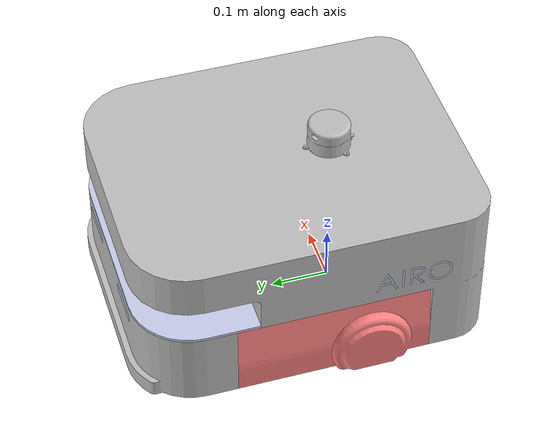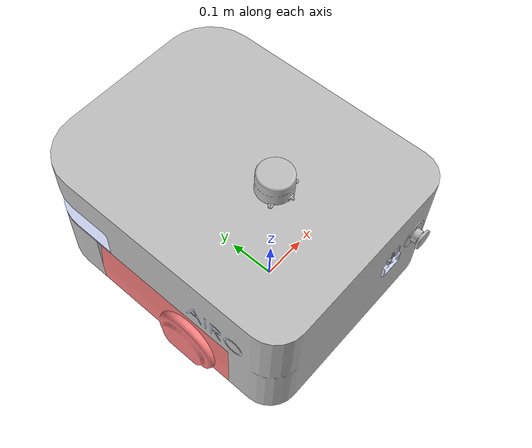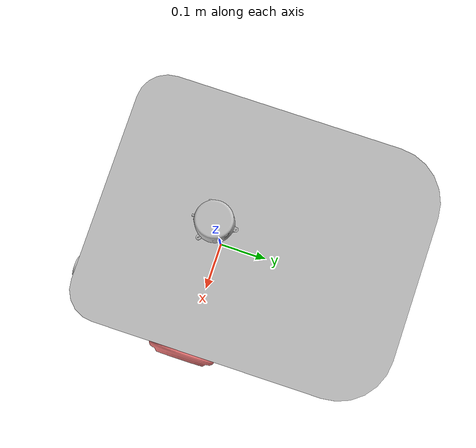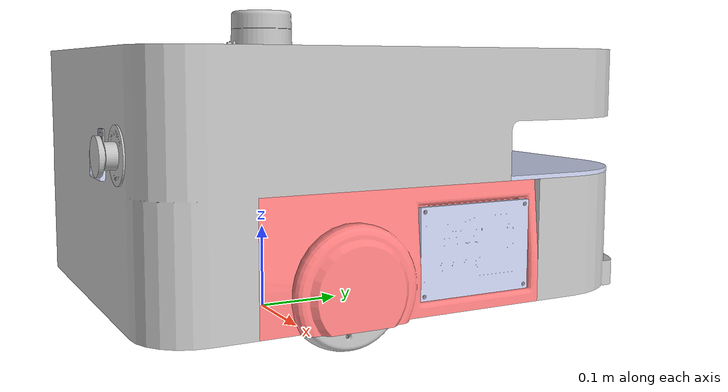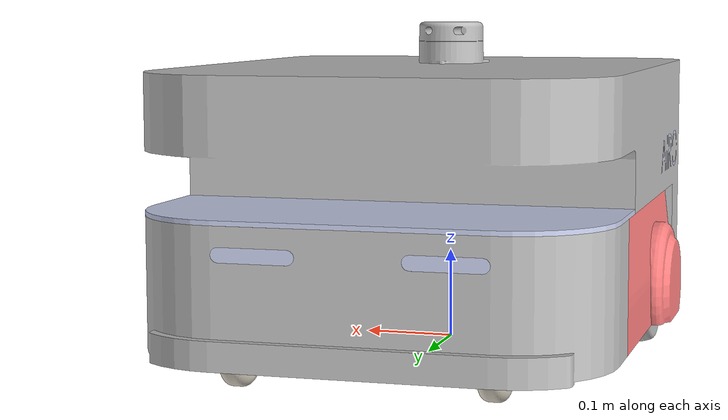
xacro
<?xml version="1.0" encoding="utf-8"?>
<robot name="luna">
  <link name="base_footprint"/>

  <joint name="base_joint" type="fixed">
    <parent link="base_footprint"/>
    <child link="base_link"/>
    <origin xyz="0 0.0 0.07" rpy="0 0 0.0"/>
  </joint>

  <link
    name="base_link">
    <inertial>
      <origin
        xyz="-0.0029784 0.069807 0.057193"
        rpy="0 0 0" />
      <mass
        value="18.614" />
      <inertia
        ixx="0.35419"
        ixy="0.0012119"
        ixz="7.4351E-05"
        iyy="0.29492"
        iyz="-0.0051696"
        izz="0.62087" />
    </inertial>
    <visual>
      <origin
        xyz="0 0 0"
        rpy="0 0 0" />
      <geometry>
        <mesh
          filename="package://luna_description/meshes/base_link.STL" />
      </geometry>
      <material
        name="">
        <color
          rgba="0.75294 0.75294 0.75294 1" />
      </material>
    </visual>
    <collision>
      <origin
        xyz="0 0 0"
        rpy="0 0 0" />
      <geometry>
        <mesh
          filename="package://luna_description/meshes/base_link.STL" />
      </geometry>
    </collision>
  </link>
  <link
    name="wheel_r_link">
    <inertial>
      <origin
        xyz="0.032334 -1.7298E-07 2.7167E-07"
        rpy="0 0 0" />
      <mass
        value="0.67381" />
      <inertia
        ixx="0.0013147"
        ixy="9.1097E-13"
        ixz="1.1442E-11"
        iyy="0.000699"
        iyz="1.1369E-08"
        izz="0.00069898" />
    </inertial>
    <visual>
      <origin
        xyz="0 0 0"
        rpy="0 0 0" />
      <geometry>
        <mesh
          filename="package://luna_description/meshes/wheel_r_link.STL" />
      </geometry>
      <material
        name="">
        <color
          rgba="0.75294 0.75294 0.75294 1" />
      </material>
    </visual>
    <collision>
      <origin
        xyz="0 0 0"
        rpy="0 0 0" />
      <geometry>
        <mesh
          filename="package://luna_description/meshes/wheel_r_link.STL" />
      </geometry>
    </collision>
  </link>
  <joint
    name="wheel_r_joint"
    type="continuous">
    <origin
      xyz="0.18525 0 0"
      rpy="2.511 0 0" />
    <parent
      link="base_link" />
    <child
      link="wheel_r_link" />
    <axis
      xyz="1 0 0" />
  </joint>
  <link
    name="wheel_l_link">
    <inertial>
      <origin
        xyz="0.032334 -1.7298E-07 2.7167E-07"
        rpy="0 0 0" />
      <mass
        value="0.67381" />
      <inertia
        ixx="0.0013147"
        ixy="9.1118E-13"
        ixz="1.1441E-11"
        iyy="0.000699"
        iyz="1.1369E-08"
        izz="0.00069898" />
    </inertial>
    <visual>
      <origin
        xyz="0 0 0"
        rpy="0 0 0" />
      <geometry>
        <mesh
          filename="package://luna_description/meshes/wheel_l_link.STL" />
      </geometry>
      <material
        name="">
        <color
          rgba="0.75294 0.75294 0.75294 1" />
      </material>
    </visual>
    <collision>
      <origin
        xyz="0 0 0"
        rpy="0 0 0" />
      <geometry>
        <mesh
          filename="package://luna_description/meshes/wheel_l_link.STL" />
      </geometry>
    </collision>
  </link>
  <joint
    name="wheel_l_joint"
    type="continuous">
    <origin
      xyz="-0.18525 0 0"
      rpy="1.7964 0 3.1416" />
    <parent
      link="base_link" />
    <child
      link="wheel_l_link" />
    <axis
      xyz="1 0 0" />
  </joint>
  <link
    name="ems_link">
    <inertial>
      <origin
        xyz="0.00056401 0.00057415 -0.030545"
        rpy="0 0 0" />
      <mass
        value="0.062839" />
      <inertia
        ixx="1.1965E-05"
        ixy="2.5958E-11"
        ixz="7.6396E-11"
        iyy="1.0932E-05"
        iyz="-5.3432E-11"
        izz="1.3191E-05" />
    </inertial>
    <visual>
      <origin
        xyz="0 0 0"
        rpy="0 0 0" />
      <geometry>
        <mesh
          filename="package://luna_description/meshes/ems_link.STL" />
      </geometry>
      <material
        name="">
        <color
          rgba="0.75294 0.75294 0.75294 1" />
      </material>
    </visual>
    <collision>
      <origin
        xyz="0 0 0"
        rpy="0 0 0" />
      <geometry>
        <mesh
          filename="package://luna_description/meshes/ems_link.STL" />
      </geometry>
    </collision>
  </link>
  <joint
    name="ems_joint"
    type="fixed">
    <origin
      xyz="0.1505 -0.19808 0.10869"
      rpy="3.1416 -0.018469 0" />
    <parent
      link="base_link" />
    <child
      link="ems_link" />
    <axis
      xyz="0 0 0" />
    <limit
      lower="0"
      upper="0"
      effort="0"
      velocity="0" />
  </joint>
  <link
    name="power_link">
    <inertial>
      <origin
        xyz="1.10113041945498E-05 -0.00106886638836576 -0.00698761482795951"
        rpy="0 0 0" />
      <mass
        value="0.000881081180283445" />
      <inertia
        ixx="2.4854252581403E-08"
        ixy="5.62881226768301E-11"
        ixz="3.6706248682811E-11"
        iyy="2.2386721062243E-08"
        iyz="-1.11116869800135E-09"
        izz="1.59685035141674E-08" />
    </inertial>
    <visual>
      <origin
        xyz="0 0 0"
        rpy="0 0 0" />
      <geometry>
        <mesh
          filename="package://luna_description/meshes/power_link.STL" />
      </geometry>
      <material
        name="">
        <color
          rgba="0.588235294117647 0.588235294117647 0.627450980392157 1" />
      </material>
    </visual>
    <collision>
      <origin
        xyz="0 0 0"
        rpy="0 0 0" />
      <geometry>
        <mesh
          filename="package://luna_description/meshes/power_link.STL" />
      </geometry>
    </collision>
  </link>
  <joint
    name="power_joint"
    type="fixed">
    <origin
      xyz="0.068076 -0.21857 0.14614"
      rpy="1.5708 0 0" />
    <parent
      link="base_link" />
    <child
      link="power_link" />
    <axis
      xyz="0 0 0" />
  </joint>
  <link
    name="volt_link">
    <inertial>
      <origin
        xyz="0.024 0.014 -0.0029962"
        rpy="0 0 0" />
      <mass
        value="0.0089208" />
      <inertia
        ixx="9.235E-07"
        ixy="1.1435E-13"
        ixz="-1.153E-21"
        iyy="2.1659E-06"
        iyz="-2.008E-21"
        izz="2.649E-06" />
    </inertial>
    <visual>
      <origin
        xyz="0 0 0"
        rpy="0 0 0" />
      <geometry>
        <mesh
          filename="package://luna_description/meshes/volt_link.STL" />
      </geometry>
      <material
        name="">
        <color
          rgba="0.79216 0.81961 0.93333 1" />
      </material>
    </visual>
    <collision>
      <origin
        xyz="0 0 0"
        rpy="0 0 0" />
      <geometry>
        <mesh
          filename="package://luna_description/meshes/volt_link.STL" />
      </geometry>
    </collision>
  </link>
  <joint
    name="volt_joint"
    type="fixed">
    <origin
      xyz="0.054041 -0.21408 0.10925"
      rpy="1.5708 0 0" />
    <parent
      link="base_link" />
    <child
      link="volt_link" />
    <axis
      xyz="0 0 0" />
  </joint>
  <link
    name="led_lilnk">
    <inertial>
      <origin
        xyz="-0.14636 0.013092 0.10676"
        rpy="0 0 0" />
      <mass
        value="0.025849" />
      <inertia
        ixx="9.117E-06"
        ixy="1.5237E-08"
        ixz="3.613E-12"
        iyy="8.3701E-06"
        iyz="-1.2396E-11"
        izz="3.5191E-06" />
    </inertial>
    <visual>
      <origin
        xyz="0 0 0"
        rpy="0 0 0" />
      <geometry>
        <mesh
          filename="package://luna_description/meshes/led_lilnk.STL" />
      </geometry>
      <material
        name="">
        <color
          rgba="0.79216 0.81961 0.93333 1" />
      </material>
    </visual>
    <collision>
      <origin
        xyz="0 0 0"
        rpy="0 0 0" />
      <geometry>
        <mesh
          filename="package://luna_description/meshes/led_lilnk.STL" />
      </geometry>
    </collision>
  </link>
  <joint
    name="led_joint"
    type="fixed">
    <origin
      xyz="-0.2305 -0.0016144 0.12364"
      rpy="-1.5708 0 -1.5708" />
    <parent
      link="base_link" />
    <child
      link="led_lilnk" />
    <axis
      xyz="0 0 0" />
  </joint>
  <link
    name="caster_r_link">
    <inertial>
      <origin
        xyz="-6.9389E-18 -5.5511E-17 0.014"
        rpy="0 0 0" />
      <mass
        value="0.012704" />
      <inertia
        ixx="3.751E-06"
        ixy="5.294E-23"
        ixz="1.3509E-21"
        iyy="3.751E-06"
        iyz="-9.7599E-22"
        izz="6.0336E-06" />
    </inertial>
    <visual>
      <origin
        xyz="0 0 0"
        rpy="0 0 0" />
      <geometry>
        <mesh
          filename="package://luna_description/meshes/caster_r_link.STL" />
      </geometry>
      <material
        name="">
        <color
          rgba="0.84314 0.81569 0.75294 1" />
      </material>
    </visual>
    <collision>
      <origin
        xyz="0 0 0"
        rpy="0 0 0" />
      <geometry>
        <mesh
          filename="package://luna_description/meshes/caster_r_link.STL" />
      </geometry>
    </collision>
  </link>
  <joint
    name="caster_r_joint"
    type="continuous">
    <origin
      xyz="0.116 0.33025 -0.03325"
      rpy="1.5708 -1.371 1.5708" />
    <parent
      link="base_link" />
    <child
      link="caster_r_link" />
    <axis
      xyz="0 0 1" />
  </joint>
  <link
    name="caster_l_link">
    <inertial>
      <origin
        xyz="-1.3878E-17 -5.5511E-17 -0.014"
        rpy="0 0 0" />
      <mass
        value="0.012704" />
      <inertia
        ixx="3.751E-06"
        ixy="5.294E-23"
        ixz="-1.2953E-21"
        iyy="3.751E-06"
        iyz="-8.7706E-22"
        izz="6.0336E-06" />
    </inertial>
    <visual>
      <origin
        xyz="0 0 0"
        rpy="0 0 0" />
      <geometry>
        <mesh
          filename="package://luna_description/meshes/caster_l_link.STL" />
      </geometry>
      <material
        name="">
        <color
          rgba="0.84314 0.81569 0.75294 1" />
      </material>
    </visual>
    <collision>
      <origin
        xyz="0 0 0"
        rpy="0 0 0" />
      <geometry>
        <mesh
          filename="package://luna_description/meshes/caster_l_link.STL" />
      </geometry>
    </collision>
  </link>
  <joint
    name="caster_l_joint"
    type="continuous">
    <origin
      xyz="-0.116 0.33025 -0.03325"
      rpy="1.5708 -1.4425 1.5708" />
    <parent
      link="base_link" />
    <child
      link="caster_l_link" />
    <axis
      xyz="0 0 1" />
  </joint>
  <link
    name="floor_link">
    <inertial>
      <origin
        xyz="-3.6729E-15 0.0025 -0.19874"
        rpy="0 0 0" />
      <mass
        value="0.44621" />
      <inertia
        ixx="0.0013457"
        ixy="-2.3274E-19"
        ixz="-3.1788E-18"
        iyy="0.0093012"
        iyz="1.631E-19"
        izz="0.0079574" />
    </inertial>
    <visual>
      <origin
        xyz="0 0 0"
        rpy="0 0 0" />
      <geometry>
        <mesh
          filename="package://luna_description/meshes/floor_link.STL" />
      </geometry>
      <material
        name="">
        <color
          rgba="0.79216 0.81961 0.93333 1" />
      </material>
    </visual>
    <collision>
      <origin
        xyz="0 0 0"
        rpy="0 0 0" />
      <geometry>
        <mesh
          filename="package://luna_description/meshes/floor_link.STL" />
      </geometry>
    </collision>
  </link>
  <joint
    name="floor_joint"
    type="fixed">
    <origin
      xyz="0 0.08696 0.102"
      rpy="1.5708 0 0" />
    <parent
      link="base_link" />
    <child
      link="floor_link" />
    <axis
      xyz="0 0 0" />
  </joint>
  <link
    name="wheel_cover_link">
    <inertial>
      <origin
        xyz="0.07613 0.040409 -0.0093356"
        rpy="0 0 0" />
      <mass
        value="0.58047" />
      <inertia
        ixx="0.0013651"
        ixy="0.00017677"
        ixz="0.0003635"
        iyy="0.005901"
        iyz="0.00011409"
        izz="0.0070413" />
    </inertial>
    <visual>
      <origin
        xyz="0 0 0"
        rpy="0 0 0" />
      <geometry>
        <mesh
          filename="package://luna_description/meshes/wheel_cover_link.STL" />
      </geometry>
      <material
        name="">
        <color
          rgba="1 0.50196 0.50196 1" />
      </material>
    </visual>
    <collision>
      <origin
        xyz="0 0 0"
        rpy="0 0 0" />
      <geometry>
        <mesh
          filename="package://luna_description/meshes/wheel_cover_link.STL" />
      </geometry>
    </collision>
  </link>
  <joint
    name="wheel_cover_joint"
    type="fixed">
    <origin
      xyz="0.23525 0 0"
      rpy="1.5708 0 1.5708" />
    <parent
      link="base_link" />
    <child
      link="wheel_cover_link" />
    <axis
      xyz="0 0 0" />
  </joint>
  <link
    name="mdui_link">
    <inertial>
      <origin
        xyz="-0.064953 0.044849 0.0024896"
        rpy="0 0 0" />
      <mass
        value="0.069365" />
      <inertia
        ixx="5.7353E-05"
        ixy="-8.9567E-08"
        ixz="-7.9861E-09"
        iyy="0.00011262"
        iyz="2.5867E-08"
        izz="0.00016969" />
    </inertial>
    <visual>
      <origin
        xyz="0 0 0"
        rpy="0 0 0" />
      <geometry>
        <mesh
          filename="package://luna_description/meshes/mdui_link.STL" />
      </geometry>
      <material
        name="">
        <color
          rgba="0.79216 0.81961 0.93333 1" />
      </material>
    </visual>
    <collision>
      <origin
        xyz="0 0 0"
        rpy="0 0 0" />
      <geometry>
        <mesh
          filename="package://luna_description/meshes/mdui_link.STL" />
      </geometry>
    </collision>
  </link>
  <joint
    name="mdui_joint"
    type="fixed">
    <origin
      xyz="0.2155 -0.0155 -0.00475"
      rpy="0 0 0" />
    <parent
      link="wheel_cover_link" />
    <child
      link="mdui_link" />
    <axis
      xyz="0 0 0" />
  </joint>
  <link
    name="base_scan">
    <inertial>
      <origin
        xyz="0.0001484 0.25476 0.16019"
        rpy="0 0 0" />
      <mass
        value="0.18368" />
      <inertia
        ixx="6.7746E-05"
        ixy="-3.5606E-07"
        ixz="2.9724E-08"
        iyy="6.732E-05"
        iyz="-1.6764E-08"
        izz="0.000122" />
    </inertial>
    <visual>
      <origin
        xyz="0 0 0"
        rpy="0 0 0" />
      <geometry>
        <mesh
          filename="package://luna_description/meshes/lidar_link.STL" />
      </geometry>
      <material
        name="">
        <color
          rgba="0.75294 0.75294 0.75294 1" />
      </material>
    </visual>
    <collision>
      <origin
        xyz="0 0 0"
        rpy="0 0 0" />
      <geometry>
        <mesh
          filename="package://luna_description/meshes/lidar_link.STL" />
      </geometry>
    </collision>
  </link>
  <joint
    name="lidar_joint"
    type="fixed">
    <origin
      xyz="0 0.25592 0.107"
      rpy="0 0 -3.1416" />
    <parent
      link="base_link" />
    <child
      link="base_scan" />
    <axis
      xyz="0 0 0" />
  </joint>
</robot>
